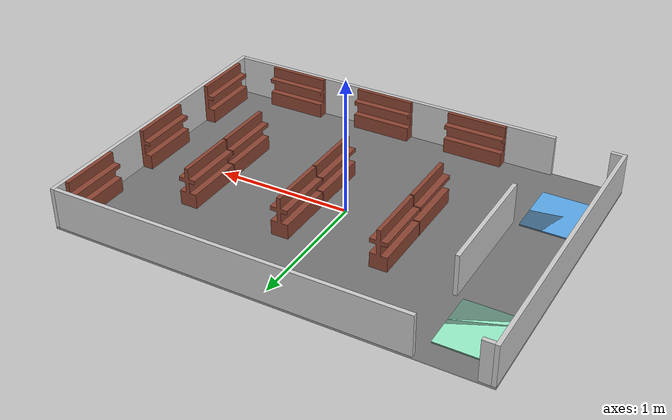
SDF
<?xml version='1.0'?>
<sdf version='1.10'>
  <world name='gz_ROS_world'>

    <!-- 중력 및 물리 설정 -->
    <gravity>0 0 -9.8</gravity>
    <physics name='default_physics' type='ignored'>
      <max_step_size>0.001</max_step_size>
      <real_time_factor>1</real_time_factor>
      <real_time_update_rate>1000</real_time_update_rate>
    </physics>

    <!-- 환경 설정 -->
    <magnetic_field>5.5645e-06 2.28758e-05 -4.23884e-05</magnetic_field>
    <atmosphere type='adiabatic'/>
    <scene>
      <ambient>0.7 0.7 0.7 1</ambient>
      <background>0.8 0.8 0.8 1</background>
      <shadows>false</shadows>
    </scene>

    <!-- 회색 바닥 (바닥재) -->
    <model name='floor'>
      <static>true</static>
      <link name='link'>
        <collision name='collision'>
          <geometry>
            <box>
              <size>3.15 2.25 0.01</size>
            </box>
          </geometry>
          <pose>0 0 0.01 0 0 0</pose>
          <surface>
            <friction><ode/></friction>
            <bounce/><contact/>
          </surface>
        </collision>
        <visual name='visual'>
          <geometry>
            <box>
              <size>3.15 2.25 0.01</size>
            </box>
          </geometry>
          <material>
            <ambient>0.2 0.2 0.2 0.5</ambient>
            <diffuse>0.2 0.2 0.2 0.5</diffuse>
            <specular>0.1 0.1 0.1 1</specular>
          </material>
          <pose>0 0 0.01 0 0 0</pose>
        </visual>
        <pose>0 0 0 0 0 0</pose>
        <inertial>
          <pose>0 0 0 0 0 0</pose>
          <mass>1</mass>
          <inertia>
            <ixx>1</ixx><ixy>0</ixy><ixz>0</ixz>
            <iyy>1</iyy><iyz>0</iyz><izz>1</izz>
          </inertia>
        </inertial>
        <enable_wind>false</enable_wind>
      </link>
      <pose>0 0 0 0 0 0</pose>
      <self_collide>false</self_collide>
    </model>

    <!-- 하늘색 바닥(포장 구역) -->
    <model name='package_floor'>
      <static>true</static>
      <link name='link'>
        <collision name='collision'>
          <geometry>
            <box>
              <size>0.45 0.45 0.01</size>
            </box>
          </geometry>
          <pose>0 0 0.01 0 0 0</pose>
          <surface>
            <friction><ode/></friction>
            <bounce/><contact/>
          </surface>
        </collision>
        <visual name='visual'>
          <geometry>
            <box>
              <size>0.45 0.45 0.01</size>
            </box>
          </geometry>
          <material>
            <ambient>0.36 0.67 0.93 1</ambient>
            <diffuse>0.36 0.67 0.93 1</diffuse>
            <specular>0.1 0.1 0.1 1</specular>
            <emissive>0 0 0 0</emissive>
          </material>
          <pose>0 0 0.01 0 0 0</pose>
        </visual>
        <pose>-1.32 -0.64 0 0 0 0</pose>
        <inertial>
          <pose>0 0 0 0 0 0</pose>
          <mass>1</mass>
          <inertia>
            <ixx>1</ixx><ixy>0</ixy><ixz>0</ixz>
            <iyy>1</iyy><iyz>0</iyz><izz>1</izz>
          </inertia>
        </inertial>
        <enable_wind>false</enable_wind>
      </link>
      <pose>0 0 0 0 0 0</pose>
      <self_collide>false</self_collide>
    </model>

    <!-- 초록색 바닥(츙전 구역) -->
    <model name='charge_floor'>
      <static>true</static>
      <link name='link'>
        <collision name='collision'>
          <geometry>
            <box>
              <size>0.45 0.45 0.01</size>
            </box>
          </geometry>
          <pose>0 0 0.01 0 0 0</pose>
          <surface>
            <friction><ode/></friction>
            <bounce/><contact/>
          </surface>
        </collision>
        <visual name='visual'>
          <geometry>
            <box>
              <size>0.45 0.45 0.01</size>
            </box>
          </geometry>
          <material>
            <ambient>0.6 0.95 0.8 1</ambient>
            <diffuse>0.6 0.95 0.8 1</diffuse>
            <specular>0.1 0.1 0.1 1</specular>
            <emissive>0 0 0 0</emissive>
          </material>
          <pose>0 0 0.01 0 0 0</pose>
        </visual>
        <pose>-1.32 0.72 0 0 0 0</pose>
        <inertial>
          <pose>0 0 0 0 0 0</pose>
          <mass>1</mass>
          <inertia>
            <ixx>1</ixx><ixy>0</ixy><ixz>0</ixz>
            <iyy>1</iyy><iyz>0</iyz><izz>1</izz>
          </inertia>
        </inertial>
        <enable_wind>false</enable_wind>
      </link>
      <pose>0 0 0 0 0 0</pose>
      <self_collide>false</self_collide>
    </model>

    <!-- 모델 추가 -->
    <include>
      <uri>./wall_80_1.sdf</uri>
      <pose>-1.465 1.095 0 0 0 0</pose>
    </include>

    <include>
      <uri>./wall_80_2.sdf</uri>
      <pose>-1.465 -1.125 0 0 0 0</pose>
    </include>

    <include>
      <uri>./wall_910.sdf</uri>
      <pose>-1.055 -0.415 0 0 0 0</pose>
    </include>

    <include>
      <uri>./wall_2250_1.sdf</uri>
      <pose>-1.575 -1.125 0 0 0 0</pose>
    </include>

    <include>
      <uri>./wall_2250_2.sdf</uri>
      <pose>1.545 -1.125 0 0 0 0</pose>
    </include>

    <include>
      <uri>./wall_2610_1.sdf</uri>
      <pose>1.545 1.095 0 0 0 0</pose>
    </include>

    <include>
      <uri>./wall_2610_2.sdf</uri>
      <pose>1.545 -1.125 0 0 0 0</pose>
    </include>

    <include>
      <uri>./shelf_half_W_1.sdf</uri>
      <pose>1.465 0.565 0 0 0 0</pose>
    </include>

    <include>
      <uri>./shelf_half_W_2.sdf</uri>
      <pose>1.465 -0.215 0 0 0 0</pose>
    </include>

    <include>
      <uri>./shelf_half_W_3.sdf</uri>
      <pose>1.465 -0.995 0 0 0 0</pose>
    </include>

    <include>
      <uri>./shelf_half_L_1.sdf</uri>
      <pose>0.795 -1.015 0 0 0 0</pose>
    </include>

    <include>
      <uri>./shelf_half_L_2.sdf</uri>
      <pose>0.045 -1.015 0 0 0 0</pose>
    </include>

    <include>
      <uri>./shelf_half_L_3.sdf</uri>
      <pose>-0.705 -1.015 0 0 0 0</pose>
    </include>

    <include>
      <uri>./shelf_1.sdf</uri>
      <pose>0.885 0.045 0 0 0 0</pose>
    </include>

    <include>
      <uri>./shelf_2.sdf</uri>
      <pose>0.885 -0.415 0 0 0 0</pose>
    </include>

    <include>
      <uri>./shelf_3.sdf</uri>
      <pose>0.155 0.045 0 0 0 0</pose>
    </include>

    <include>
      <uri>./shelf_4.sdf</uri>
      <pose>0.155 -0.415 0 0 0 0</pose>
    </include>

    <include>
      <uri>./shelf_5.sdf</uri>
      <pose>-0.575 0.045 0 0 0 0</pose>
    </include>

    <include>
      <uri>./shelf_6.sdf</uri>
      <pose>-0.575 -0.415 0 0 0 0</pose>
    </include>

  </world>
</sdf>

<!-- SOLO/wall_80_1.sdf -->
<sdf version="1.10">
  <model name="wall_80_1">
    <static>true</static>
    <link name="link">
      <visual name="visual">
        <geometry>
          <mesh>
            <uri>./wall_80.dae</uri>
          </mesh>
        </geometry>
        <material>
          <ambient>0.8 0.8 0.8 1</ambient>
          <diffuse>0.8 0.8 0.8 1</diffuse>
          <specular>0.1 0.1 0.1 1</specular>
        </material>
      </visual>
      <collision name="collision">
        <geometry>
          <mesh>
            <uri>./wall_80.dae</uri>
          </mesh>
        </geometry>
      </collision>
    </link>
    <pose>0 0 0 0 0 0</pose>
  </model>
</sdf>

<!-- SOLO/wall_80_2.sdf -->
<sdf version="1.10">
  <model name="wall_80_2">
    <static>true</static>
    <link name="link">
      <visual name="visual">
        <geometry>
          <mesh>
            <uri>./wall_80.dae</uri>
          </mesh>
        </geometry>
        <material>
          <ambient>0.8 0.8 0.8 1</ambient>
          <diffuse>0.8 0.8 0.8 1</diffuse>
          <specular>0.1 0.1 0.1 1</specular>
        </material>
      </visual>
      <collision name="collision">
        <geometry>
          <mesh>
            <uri>./wall_80.dae</uri>
          </mesh>
        </geometry>
      </collision>
    </link>
    <pose>0 0 0 0 0 0</pose>
  </model>
</sdf>

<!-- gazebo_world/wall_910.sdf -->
<sdf version="1.10">
  <model name="wall_910">
    <static>true</static>
    <link name="link">
      <visual name="visual">
        <geometry>
          <mesh>
            <uri>./models/wall_910.dae</uri>
          </mesh>
        </geometry>
        <material>
          <ambient>0.8 0.8 0.8 1</ambient>
          <diffuse>0.8 0.8 0.8 1</diffuse>
          <specular>0.1 0.1 0.1 1</specular>
        </material>
      </visual>
      <collision name="collision">
        <geometry>
          <mesh>
            <uri>./models/wall_910.dae</uri>
          </mesh>
        </geometry>
      </collision>
    </link>
    <pose>0 0 0 0 0 0</pose>
  </model>
</sdf>

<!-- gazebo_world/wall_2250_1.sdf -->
<sdf version="1.10">
  <model name="wall_2250_1">
    <static>true</static>
    <link name="link">
      <visual name="visual">
        <geometry>
          <mesh>
            <uri>./models/wall_2250.dae</uri>
          </mesh>
        </geometry>
        <material>
          <ambient>0.8 0.8 0.8 1</ambient>
          <diffuse>0.8 0.8 0.8 1</diffuse>
          <specular>0.1 0.1 0.1 1</specular>
        </material>
      </visual>
      <collision name="collision">
        <geometry>
          <mesh>
            <uri>./models/wall_2250.dae</uri>
          </mesh>
        </geometry>
      </collision>
    </link>
    <pose>0 0 0 0 0 0</pose>
  </model>
</sdf>

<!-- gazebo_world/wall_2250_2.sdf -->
<sdf version="1.10">
  <model name="wall_2250_2">
    <static>true</static>
    <link name="link">
      <visual name="visual">
        <geometry>
          <mesh>
            <uri>./models/wall_2250.dae</uri>
          </mesh>
        </geometry>
        <material>
          <ambient>0.8 0.8 0.8 1</ambient>
          <diffuse>0.8 0.8 0.8 1</diffuse>
          <specular>0.1 0.1 0.1 1</specular>
        </material>
      </visual>
      <collision name="collision">
        <geometry>
          <mesh>
            <uri>./models/wall_2250.dae</uri>
          </mesh>
        </geometry>
      </collision>
    </link>
    <pose>0 0 0 0 0 0</pose>
  </model>
</sdf>

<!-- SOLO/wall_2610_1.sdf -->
<sdf version="1.10">
  <model name="wall_2610_1">
    <static>true</static>
    <link name="link">
      <visual name="visual">
        <geometry>
          <mesh>
            <uri>./wall_2610.dae</uri>
          </mesh>
        </geometry>
        <material>
          <ambient>0.8 0.8 0.8 1</ambient>
          <diffuse>0.8 0.8 0.8 1</diffuse>
          <specular>0.1 0.1 0.1 1</specular>
        </material>
      </visual>
      <collision name="collision">
        <geometry>
          <mesh>
            <uri>./wall_2610.dae</uri>
          </mesh>
        </geometry>
      </collision>
    </link>
    <pose>0 0 0 0 0 0</pose>
  </model>
</sdf>

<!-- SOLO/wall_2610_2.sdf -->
<sdf version="1.10">
  <model name="wall_2610_2">
    <static>true</static>
    <link name="link">
      <visual name="visual">
        <geometry>
          <mesh>
            <uri>./wall_2610.dae</uri>
          </mesh>
        </geometry>
        <material>
          <ambient>0.8 0.8 0.8 1</ambient>
          <diffuse>0.8 0.8 0.8 1</diffuse>
          <specular>0.1 0.1 0.1 1</specular>
        </material>
      </visual>
      <collision name="collision">
        <geometry>
          <mesh>
            <uri>./wall_2610.dae</uri>
          </mesh>
        </geometry>
      </collision>
    </link>
    <pose>0 0 0 0 0 0</pose>
  </model>
</sdf>

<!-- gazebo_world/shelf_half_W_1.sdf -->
<sdf version="1.10">
  <model name="shelf_half_W_1">
    <static>true</static>
    <link name="link">
      <visual name="visual">
        <geometry>
          <mesh>
            <uri>./models/shelf_half_W.dae</uri>
          </mesh>
        </geometry>
        <material>
          <ambient>0.55 0.27 0.20 1</ambient>
          <diffuse>0.55 0.27 0.20 1</diffuse>
          <specular>0.1 0.1 0.1 1</specular>
          <emissive>0 0 0 1</emissive>
        </material>
      </visual>
      <collision name="collision">
        <geometry>
          <mesh>
            <uri>./models/shelf_half_W.dae</uri>
          </mesh>
        </geometry>
      </collision>
    </link>
    <pose>0 0 0 0 0 0</pose>
  </model>
</sdf>

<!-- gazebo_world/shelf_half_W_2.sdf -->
<sdf version="1.10">
  <model name="shelf_half_W_2">
    <static>true</static>
    <link name="link">
      <visual name="visual">
        <geometry>
          <mesh>
            <uri>./models/shelf_half_W.dae</uri>
          </mesh>
        </geometry>
        <material>
          <ambient>0.55 0.27 0.20 1</ambient>
          <diffuse>0.55 0.27 0.20 1</diffuse>
          <specular>0.1 0.1 0.1 1</specular>
          <emissive>0 0 0 1</emissive>
        </material>
      </visual>
      <collision name="collision">
        <geometry>
          <mesh>
            <uri>./models/shelf_half_W.dae</uri>
          </mesh>
        </geometry>
      </collision>
    </link>
    <pose>0 0 0 0 0 0</pose>
  </model>
</sdf>

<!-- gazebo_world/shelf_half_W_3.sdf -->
<sdf version="1.10">
  <model name="shelf_half_W_3">
    <static>true</static>
    <link name="link">
      <visual name="visual">
        <geometry>
          <mesh>
            <uri>./models/shelf_half_W.dae</uri>
          </mesh>
        </geometry>
        <material>
          <ambient>0.55 0.27 0.20 1</ambient>
          <diffuse>0.55 0.27 0.20 1</diffuse>
          <specular>0.1 0.1 0.1 1</specular>
          <emissive>0 0 0 1</emissive>
        </material>
      </visual>
      <collision name="collision">
        <geometry>
          <mesh>
            <uri>./models/shelf_half_W.dae</uri>
          </mesh>
        </geometry>
      </collision>
    </link>
    <pose>0 0 0 0 0 0</pose>
  </model>
</sdf>

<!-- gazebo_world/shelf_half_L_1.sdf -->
<sdf version="1.10">
  <model name="shelf_half_L_1">
    <static>true</static>
    <link name="link">
      <visual name="visual">
        <geometry>
          <mesh>
            <uri>./models/shelf_half_L.dae</uri>
          </mesh>
        </geometry>
        <material>
          <ambient>0.55 0.27 0.20 1</ambient>
          <diffuse>0.55 0.27 0.20 1</diffuse>
          <specular>0.1 0.1 0.1 1</specular>
          <emissive>0 0 0 1</emissive>
        </material>
      </visual>
      <collision name="collision">
        <geometry>
          <mesh>
            <uri>./models/shelf_half_L.dae</uri>
          </mesh>
        </geometry>
      </collision>
    </link>
    <pose>0 0 0 0 0 0</pose>
  </model>
</sdf>

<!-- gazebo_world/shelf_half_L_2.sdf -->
<sdf version="1.10">
  <model name="shelf_half_L_2">
    <static>true</static>
    <link name="link">
      <visual name="visual">
        <geometry>
          <mesh>
            <uri>./models/shelf_half_L.dae</uri>
          </mesh>
        </geometry>
        <material>
          <ambient>0.55 0.27 0.20 1</ambient>
          <diffuse>0.55 0.27 0.20 1</diffuse>
          <specular>0.1 0.1 0.1 1</specular>
          <emissive>0 0 0 1</emissive>
        </material>
      </visual>
      <collision name="collision">
        <geometry>
          <mesh>
            <uri>./models/shelf_half_L.dae</uri>
          </mesh>
        </geometry>
      </collision>
    </link>
    <pose>0 0 0 0 0 0</pose>
  </model>
</sdf>

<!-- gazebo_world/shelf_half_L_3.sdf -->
<sdf version="1.10">
  <model name="shelf_half_L_3">
    <static>true</static>
    <link name="link">
      <visual name="visual">
        <geometry>
          <mesh>
            <uri>./models/shelf_half_L.dae</uri>
          </mesh>
        </geometry>
        <material>
          <ambient>0.55 0.27 0.20 1</ambient>
          <diffuse>0.55 0.27 0.20 1</diffuse>
          <specular>0.1 0.1 0.1 1</specular>
          <emissive>0 0 0 1</emissive>
        </material>
      </visual>
      <collision name="collision">
        <geometry>
          <mesh>
            <uri>./models/shelf_half_L.dae</uri>
          </mesh>
        </geometry>
      </collision>
    </link>
    <pose>0 0 0 0 0 0</pose>
  </model>
</sdf>

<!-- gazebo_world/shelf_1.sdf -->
<sdf version="1.10">
  <model name="shelf_1">
    <static>true</static>
    <link name="link">
      <visual name="visual">
        <geometry>
          <mesh>
            <uri>./models/shelf_fix.dae</uri>
          </mesh>
        </geometry>
        <material>
          <ambient>0.55 0.27 0.20 1</ambient>
          <diffuse>0.55 0.27 0.20 1</diffuse>
          <specular>0.1 0.1 0.1 1</specular>
          <emissive>0 0 0 1</emissive>
        </material>
      </visual>
      <collision name="collision">
        <geometry>
          <mesh>
            <uri>./models/shelf.dae</uri>
          </mesh>
        </geometry>
      </collision>
    </link>
    <pose>0 0 0 0 0 0</pose>
  </model>
</sdf>

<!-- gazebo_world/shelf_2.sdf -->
<sdf version="1.10">
  <model name="shelf_2">
    <static>true</static>
    <link name="link">
      <visual name="visual">
        <geometry>
          <mesh>
            <uri>./models/shelf.dae</uri>
          </mesh>
        </geometry>
        <material>
          <ambient>0.55 0.27 0.20 1</ambient>
          <diffuse>0.55 0.27 0.20 1</diffuse>
          <specular>0.1 0.1 0.1 1</specular>
          <emissive>0 0 0 1</emissive>
        </material>
      </visual>
      <collision name="collision">
        <geometry>
          <mesh>
            <uri>./models/shelf.dae</uri>
          </mesh>
        </geometry>
      </collision>
    </link>
    <pose>0 0 0 0 0 0</pose>
  </model>
</sdf>

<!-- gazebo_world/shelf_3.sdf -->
<sdf version="1.10">
  <model name="shelf_3">
    <static>true</static>
    <link name="link">
      <visual name="visual">
        <geometry>
          <mesh>
            <uri>./models/shelf.dae</uri>
          </mesh>
        </geometry>
        <material>
          <ambient>0.55 0.27 0.20 1</ambient>
          <diffuse>0.55 0.27 0.20 1</diffuse>
          <specular>0.1 0.1 0.1 1</specular>
          <emissive>0 0 0 1</emissive>
        </material>
      </visual>
      <collision name="collision">
        <geometry>
          <mesh>
            <uri>./models/shelf.dae</uri>
          </mesh>
        </geometry>
      </collision>
    </link>
    <pose>0 0 0 0 0 0</pose>
  </model>
</sdf>

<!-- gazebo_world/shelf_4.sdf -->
<sdf version="1.10">
  <model name="shelf_4">
    <static>true</static>
    <link name="link">
      <visual name="visual">
        <geometry>
          <mesh>
            <uri>./models/shelf.dae</uri>
          </mesh>
        </geometry>
        <material>
          <ambient>0.55 0.27 0.20 1</ambient>
          <diffuse>0.55 0.27 0.20 1</diffuse>
          <specular>0.1 0.1 0.1 1</specular>
          <emissive>0 0 0 1</emissive>
        </material>
      </visual>
      <collision name="collision">
        <geometry>
          <mesh>
            <uri>./models/shelf.dae</uri>
          </mesh>
        </geometry>
      </collision>
    </link>
    <pose>0 0 0 0 0 0</pose>
  </model>
</sdf>

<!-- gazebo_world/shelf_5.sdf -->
<sdf version="1.10">
  <model name="shelf_5">
    <static>true</static>
    <link name="link">
      <visual name="visual">
        <geometry>
          <mesh>
            <uri>./models/shelf.dae</uri>
          </mesh>
        </geometry>
        <material>
          <ambient>0.55 0.27 0.20 1</ambient>
          <diffuse>0.55 0.27 0.20 1</diffuse>
          <specular>0.1 0.1 0.1 1</specular>
          <emissive>0 0 0 1</emissive>
        </material>
      </visual>
      <collision name="collision">
        <geometry>
          <mesh>
            <uri>./models/shelf.dae</uri>
          </mesh>
        </geometry>
      </collision>
    </link>
    <pose>0 0 0 0 0 0</pose>
  </model>
</sdf>

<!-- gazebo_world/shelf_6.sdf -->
<sdf version="1.10">
  <model name="shelf_6">
    <static>true</static>
    <link name="link">
      <visual name="visual">
        <geometry>
          <mesh>
            <uri>./models/shelf.dae</uri>
          </mesh>
        </geometry>
        <material>
          <ambient>0.55 0.27 0.20 1</ambient>
          <diffuse>0.55 0.27 0.20 1</diffuse>
          <specular>0.1 0.1 0.1 1</specular>
          <emissive>0 0 0 1</emissive>
        </material>
      </visual>
      <collision name="collision">
        <geometry>
          <mesh>
            <uri>./models/shelf.dae</uri>
          </mesh>
        </geometry>
      </collision>
    </link>
    <pose>0 0 0 0 0 0</pose>
  </model>
</sdf>
